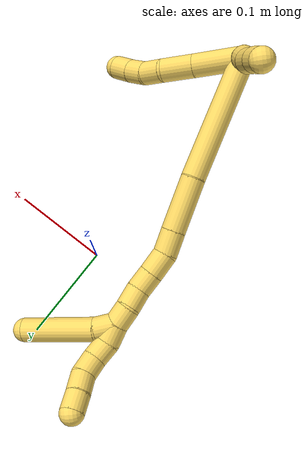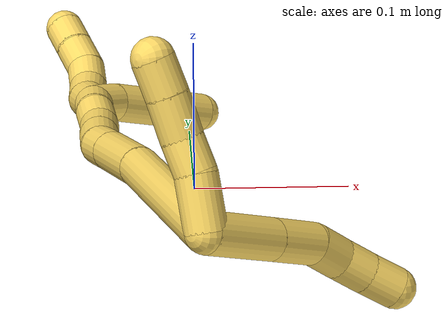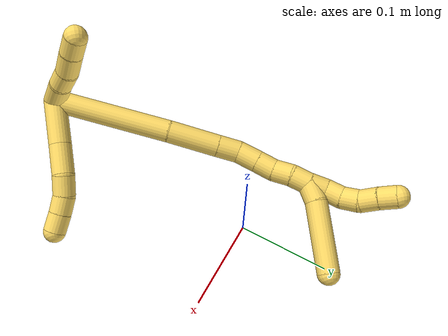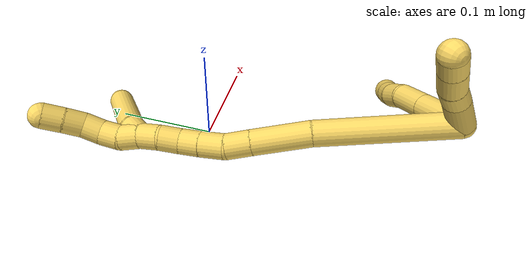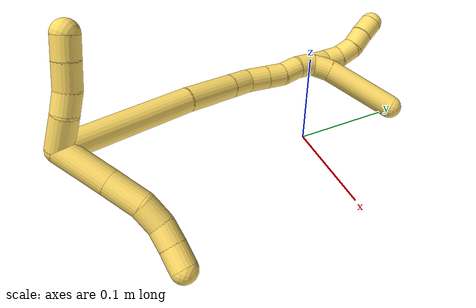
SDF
<sdf version="1.7">
 <world name="default">
  <model name="5">
   <static>0</static>
   <link name="5">
    <collision name="collision-cylinder-e_1_2_8">
     <pose>0.00458 0.001614 0.025398 -0.063476 0.178062 -0.005668</pose>
     <geometry><cylinder><radius>0.0125</radius><length>0.051716</length></cylinder></geometry>
     <surface>
      <friction><ode><mu>1.16</mu><mu2>1.16</mu2><slip1>0</slip1><slip2>0</slip2></ode></friction>
      <contact><ode><kp>1e+06</kp><kd>1</kd><max_vel>0</max_vel><min_depth>0.001</min_depth></ode></contact>
     </surface>
    </collision>
    <visual name="visual-cylinder-e_1_2_8">
     <pose>0.00458 0.001614 0.025398 -0.063476 0.178062 -0.005668</pose>
     <geometry><cylinder><radius>0.0125</radius><length>0.051716</length></cylinder></geometry>
     <material><ambient>1 0.858824 0.4 1</ambient></material>
    </visual>
    <collision name="collision-cylinder-e_2_8_9">
     <pose>0.012321 0.004177 0.067609 -0.056343 0.185522 -0.005243</pose>
     <geometry><cylinder><radius>0.0125</radius><length>0.034268</length></cylinder></geometry>
     <surface>
      <friction><ode><mu>1.16</mu><mu2>1.16</mu2><slip1>0</slip1><slip2>0</slip2></ode></friction>
      <contact><ode><kp>1e+06</kp><kd>1</kd><max_vel>0</max_vel><min_depth>0.001</min_depth></ode></contact>
     </surface>
    </collision>
    <visual name="visual-cylinder-e_2_8_9">
     <pose>0.012321 0.004177 0.067609 -0.056343 0.185522 -0.005243</pose>
     <geometry><cylinder><radius>0.0125</radius><length>0.034268</length></cylinder></geometry>
     <material><ambient>1 0.858824 0.4 1</ambient></material>
    </visual>
    <collision name="collision-cylinder-e_3_9_10">
     <pose>0.020603 0.006902 0.094463 -0.175121 0.46553 -0.041615</pose>
     <geometry><cylinder><radius>0.0125</radius><length>0.022821</length></cylinder></geometry>
     <surface>
      <friction><ode><mu>1.16</mu><mu2>1.16</mu2><slip1>0</slip1><slip2>0</slip2></ode></friction>
      <contact><ode><kp>1e+06</kp><kd>1</kd><max_vel>0</max_vel><min_depth>0.001</min_depth></ode></contact>
     </surface>
    </collision>
    <visual name="visual-cylinder-e_3_9_10">
     <pose>0.020603 0.006902 0.094463 -0.175121 0.46553 -0.041615</pose>
     <geometry><cylinder><radius>0.0125</radius><length>0.022821</length></cylinder></geometry>
     <material><ambient>1 0.858824 0.4 1</ambient></material>
    </visual>
    <collision name="collision-cylinder-e_4_10_11">
     <pose>0.031663 0.008146 0.112585 0.065822 0.632561 0.021548</pose>
     <geometry><cylinder><radius>0.0125</radius><length>0.020085</length></cylinder></geometry>
     <surface>
      <friction><ode><mu>1.16</mu><mu2>1.16</mu2><slip1>0</slip1><slip2>0</slip2></ode></friction>
      <contact><ode><kp>1e+06</kp><kd>1</kd><max_vel>0</max_vel><min_depth>0.001</min_depth></ode></contact>
     </surface>
    </collision>
    <visual name="visual-cylinder-e_4_10_11">
     <pose>0.031663 0.008146 0.112585 0.065822 0.632561 0.021548</pose>
     <geometry><cylinder><radius>0.0125</radius><length>0.020085</length></cylinder></geometry>
     <material><ambient>1 0.858824 0.4 1</ambient></material>
    </visual>
    <collision name="collision-cylinder-e_5_11_6">
     <pose>0.044004 0.006386 0.128967 0.146802 0.6519 0.049699</pose>
     <geometry><cylinder><radius>0.0125</radius><length>0.021109</length></cylinder></geometry>
     <surface>
      <friction><ode><mu>1.16</mu><mu2>1.16</mu2><slip1>0</slip1><slip2>0</slip2></ode></friction>
      <contact><ode><kp>1e+06</kp><kd>1</kd><max_vel>0</max_vel><min_depth>0.001</min_depth></ode></contact>
     </surface>
    </collision>
    <visual name="visual-cylinder-e_5_11_6">
     <pose>0.044004 0.006386 0.128967 0.146802 0.6519 0.049699</pose>
     <geometry><cylinder><radius>0.0125</radius><length>0.021109</length></cylinder></geometry>
     <material><ambient>1 0.858824 0.4 1</ambient></material>
    </visual>
    <collision name="collision-cylinder-e_1_2_12">
     <pose>-0.015559 -0.005089 -0.000552 1.67889 -1.25294 -1.35739</pose>
     <geometry><cylinder><radius>0.0125</radius><length>0.032759</length></cylinder></geometry>
     <surface>
      <friction><ode><mu>1.16</mu><mu2>1.16</mu2><slip1>0</slip1><slip2>0</slip2></ode></friction>
      <contact><ode><kp>1e+06</kp><kd>1</kd><max_vel>0</max_vel><min_depth>0.001</min_depth></ode></contact>
     </surface>
    </collision>
    <visual name="visual-cylinder-e_1_2_12">
     <pose>-0.015559 -0.005089 -0.000552 1.67889 -1.25294 -1.35739</pose>
     <geometry><cylinder><radius>0.0125</radius><length>0.032759</length></cylinder></geometry>
     <material><ambient>1 0.858824 0.4 1</ambient></material>
    </visual>
    <collision name="collision-cylinder-e_2_12_13">
     <pose>-0.04109 -0.011745 -0.002773 2.38773 -1.34515 -2.21907</pose>
     <geometry><cylinder><radius>0.0125</radius><length>0.020462</length></cylinder></geometry>
     <surface>
      <friction><ode><mu>1.16</mu><mu2>1.16</mu2><slip1>0</slip1><slip2>0</slip2></ode></friction>
      <contact><ode><kp>1e+06</kp><kd>1</kd><max_vel>0</max_vel><min_depth>0.001</min_depth></ode></contact>
     </surface>
    </collision>
    <visual name="visual-cylinder-e_2_12_13">
     <pose>-0.04109 -0.011745 -0.002773 2.38773 -1.34515 -2.21907</pose>
     <geometry><cylinder><radius>0.0125</radius><length>0.020462</length></cylinder></geometry>
     <material><ambient>1 0.858824 0.4 1</ambient></material>
    </visual>
    <collision name="collision-cylinder-e_3_13_14">
     <pose>-0.062765 -0.017144 -0.007695 2.27463 -1.16517 -1.91682</pose>
     <geometry><cylinder><radius>0.0125</radius><length>0.025475</length></cylinder></geometry>
     <surface>
      <friction><ode><mu>1.16</mu><mu2>1.16</mu2><slip1>0</slip1><slip2>0</slip2></ode></friction>
      <contact><ode><kp>1e+06</kp><kd>1</kd><max_vel>0</max_vel><min_depth>0.001</min_depth></ode></contact>
     </surface>
    </collision>
    <visual name="visual-cylinder-e_3_13_14">
     <pose>-0.062765 -0.017144 -0.007695 2.27463 -1.16517 -1.91682</pose>
     <geometry><cylinder><radius>0.0125</radius><length>0.025475</length></cylinder></geometry>
     <material><ambient>1 0.858824 0.4 1</ambient></material>
    </visual>
    <collision name="collision-cylinder-e_4_14_5">
     <pose>-0.08432 -0.023748 -0.013904 2.38838 -1.18046 -2.07498</pose>
     <geometry><cylinder><radius>0.0125</radius><length>0.021304</length></cylinder></geometry>
     <surface>
      <friction><ode><mu>1.16</mu><mu2>1.16</mu2><slip1>0</slip1><slip2>0</slip2></ode></friction>
      <contact><ode><kp>1e+06</kp><kd>1</kd><max_vel>0</max_vel><min_depth>0.001</min_depth></ode></contact>
     </surface>
    </collision>
    <visual name="visual-cylinder-e_4_14_5">
     <pose>-0.08432 -0.023748 -0.013904 2.38838 -1.18046 -2.07498</pose>
     <geometry><cylinder><radius>0.0125</radius><length>0.021304</length></cylinder></geometry>
     <material><ambient>1 0.858824 0.4 1</ambient></material>
    </visual>
    <collision name="collision-cylinder-e_1_2_15">
     <pose>-0.036956 0.045331 0.031655 -0.961207 -0.589212 0.313809</pose>
     <geometry><cylinder><radius>0.0125</radius><length>0.133006</length></cylinder></geometry>
     <surface>
      <friction><ode><mu>1.16</mu><mu2>1.16</mu2><slip1>0</slip1><slip2>0</slip2></ode></friction>
      <contact><ode><kp>1e+06</kp><kd>1</kd><max_vel>0</max_vel><min_depth>0.001</min_depth></ode></contact>
     </surface>
    </collision>
    <visual name="visual-cylinder-e_1_2_15">
     <pose>-0.036956 0.045331 0.031655 -0.961207 -0.589212 0.313809</pose>
     <geometry><cylinder><radius>0.0125</radius><length>0.133006</length></cylinder></geometry>
     <material><ambient>1 0.858824 0.4 1</ambient></material>
    </visual>
    <collision name="collision-cylinder-e_2_15_16">
     <pose>-0.087524 0.111788 0.07627 -1.02051 -0.502231 0.285208</pose>
     <geometry><cylinder><radius>0.0125</radius><length>0.056554</length></cylinder></geometry>
     <surface>
      <friction><ode><mu>1.16</mu><mu2>1.16</mu2><slip1>0</slip1><slip2>0</slip2></ode></friction>
      <contact><ode><kp>1e+06</kp><kd>1</kd><max_vel>0</max_vel><min_depth>0.001</min_depth></ode></contact>
     </surface>
    </collision>
    <visual name="visual-cylinder-e_2_15_16">
     <pose>-0.087524 0.111788 0.07627 -1.02051 -0.502231 0.285208</pose>
     <geometry><cylinder><radius>0.0125</radius><length>0.056554</length></cylinder></geometry>
     <material><ambient>1 0.858824 0.4 1</ambient></material>
    </visual>
    <collision name="collision-cylinder-e_3_16_17">
     <pose>-0.107032 0.142208 0.094727 -1.03682 -0.499788 0.28916</pose>
     <geometry><cylinder><radius>0.0125</radius><length>0.024605</length></cylinder></geometry>
     <surface>
      <friction><ode><mu>1.16</mu><mu2>1.16</mu2><slip1>0</slip1><slip2>0</slip2></ode></friction>
      <contact><ode><kp>1e+06</kp><kd>1</kd><max_vel>0</max_vel><min_depth>0.001</min_depth></ode></contact>
     </surface>
    </collision>
    <visual name="visual-cylinder-e_3_16_17">
     <pose>-0.107032 0.142208 0.094727 -1.03682 -0.499788 0.28916</pose>
     <geometry><cylinder><radius>0.0125</radius><length>0.024605</length></cylinder></geometry>
     <material><ambient>1 0.858824 0.4 1</ambient></material>
    </visual>
    <collision name="collision-cylinder-e_4_17_18">
     <pose>-0.118774 0.15832 0.108264 -0.703175 -0.506272 0.18922</pose>
     <geometry><cylinder><radius>0.0125</radius><length>0.024109</length></cylinder></geometry>
     <surface>
      <friction><ode><mu>1.16</mu><mu2>1.16</mu2><slip1>0</slip1><slip2>0</slip2></ode></friction>
      <contact><ode><kp>1e+06</kp><kd>1</kd><max_vel>0</max_vel><min_depth>0.001</min_depth></ode></contact>
     </surface>
    </collision>
    <visual name="visual-cylinder-e_4_17_18">
     <pose>-0.118774 0.15832 0.108264 -0.703175 -0.506272 0.18922</pose>
     <geometry><cylinder><radius>0.0125</radius><length>0.024109</length></cylinder></geometry>
     <material><ambient>1 0.858824 0.4 1</ambient></material>
    </visual>
    <collision name="collision-cylinder-e_5_18_19">
     <pose>-0.129702 0.17066 0.123367 -0.663801 -0.515788 0.181316</pose>
     <geometry><cylinder><radius>0.0125</radius><length>0.020609</length></cylinder></geometry>
     <surface>
      <friction><ode><mu>1.16</mu><mu2>1.16</mu2><slip1>0</slip1><slip2>0</slip2></ode></friction>
      <contact><ode><kp>1e+06</kp><kd>1</kd><max_vel>0</max_vel><min_depth>0.001</min_depth></ode></contact>
     </surface>
    </collision>
    <visual name="visual-cylinder-e_5_18_19">
     <pose>-0.129702 0.17066 0.123367 -0.663801 -0.515788 0.181316</pose>
     <geometry><cylinder><radius>0.0125</radius><length>0.020609</length></cylinder></geometry>
     <material><ambient>1 0.858824 0.4 1</ambient></material>
    </visual>
    <collision name="collision-cylinder-e_6_19_20">
     <pose>-0.141775 0.181339 0.136155 -0.73286 -0.736757 0.294124</pose>
     <geometry><cylinder><radius>0.0125</radius><length>0.02081</length></cylinder></geometry>
     <surface>
      <friction><ode><mu>1.16</mu><mu2>1.16</mu2><slip1>0</slip1><slip2>0</slip2></ode></friction>
      <contact><ode><kp>1e+06</kp><kd>1</kd><max_vel>0</max_vel><min_depth>0.001</min_depth></ode></contact>
     </surface>
    </collision>
    <visual name="visual-cylinder-e_6_19_20">
     <pose>-0.141775 0.181339 0.136155 -0.73286 -0.736757 0.294124</pose>
     <geometry><cylinder><radius>0.0125</radius><length>0.02081</length></cylinder></geometry>
     <material><ambient>1 0.858824 0.4 1</ambient></material>
    </visual>
    <collision name="collision-cylinder-e_7_20_1">
     <pose>-0.153784 0.192313 0.14852 -0.71975 -0.516918 0.198293</pose>
     <geometry><cylinder><radius>0.0125</radius><length>0.020306</length></cylinder></geometry>
     <surface>
      <friction><ode><mu>1.16</mu><mu2>1.16</mu2><slip1>0</slip1><slip2>0</slip2></ode></friction>
      <contact><ode><kp>1e+06</kp><kd>1</kd><max_vel>0</max_vel><min_depth>0.001</min_depth></ode></contact>
     </surface>
    </collision>
    <visual name="visual-cylinder-e_7_20_1">
     <pose>-0.153784 0.192313 0.14852 -0.71975 -0.516918 0.198293</pose>
     <geometry><cylinder><radius>0.0125</radius><length>0.020306</length></cylinder></geometry>
     <material><ambient>1 0.858824 0.4 1</ambient></material>
    </visual>
    <collision name="collision-cylinder-e_1_1_21">
     <pose>-0.159189 0.199522 0.165836 -0.129482 -0.035985 0.002333</pose>
     <geometry><cylinder><radius>0.0125</radius><length>0.02155</length></cylinder></geometry>
     <surface>
      <friction><ode><mu>1.16</mu><mu2>1.16</mu2><slip1>0</slip1><slip2>0</slip2></ode></friction>
      <contact><ode><kp>1e+06</kp><kd>1</kd><max_vel>0</max_vel><min_depth>0.001</min_depth></ode></contact>
     </surface>
    </collision>
    <visual name="visual-cylinder-e_1_1_21">
     <pose>-0.159189 0.199522 0.165836 -0.129482 -0.035985 0.002333</pose>
     <geometry><cylinder><radius>0.0125</radius><length>0.02155</length></cylinder></geometry>
     <material><ambient>1 0.858824 0.4 1</ambient></material>
    </visual>
    <collision name="collision-cylinder-e_2_21_4">
     <pose>-0.1529 0.20196 0.215152 -0.027104 0.171061 -0.002324</pose>
     <geometry><cylinder><radius>0.0125</radius><length>0.07845</length></cylinder></geometry>
     <surface>
      <friction><ode><mu>1.16</mu><mu2>1.16</mu2><slip1>0</slip1><slip2>0</slip2></ode></friction>
      <contact><ode><kp>1e+06</kp><kd>1</kd><max_vel>0</max_vel><min_depth>0.001</min_depth></ode></contact>
     </surface>
    </collision>
    <visual name="visual-cylinder-e_2_21_4">
     <pose>-0.1529 0.20196 0.215152 -0.027104 0.171061 -0.002324</pose>
     <geometry><cylinder><radius>0.0125</radius><length>0.07845</length></cylinder></geometry>
     <material><ambient>1 0.858824 0.4 1</ambient></material>
    </visual>
    <collision name="collision-cylinder-e_1_1_22">
     <pose>-0.163527 0.205227 0.160385 -0.935898 -0.492179 0.252537</pose>
     <geometry><cylinder><radius>0.0125</radius><length>0.02</length></cylinder></geometry>
     <surface>
      <friction><ode><mu>1.16</mu><mu2>1.16</mu2><slip1>0</slip1><slip2>0</slip2></ode></friction>
      <contact><ode><kp>1e+06</kp><kd>1</kd><max_vel>0</max_vel><min_depth>0.001</min_depth></ode></contact>
     </surface>
    </collision>
    <visual name="visual-cylinder-e_1_1_22">
     <pose>-0.163527 0.205227 0.160385 -0.935898 -0.492179 0.252537</pose>
     <geometry><cylinder><radius>0.0125</radius><length>0.02</length></cylinder></geometry>
     <material><ambient>1 0.858824 0.4 1</ambient></material>
    </visual>
    <collision name="collision-cylinder-e_2_22_23">
     <pose>-0.174143 0.216622 0.172454 -0.560984 -0.62985 0.18715</pose>
     <geometry><cylinder><radius>0.0125</radius><length>0.02</length></cylinder></geometry>
     <surface>
      <friction><ode><mu>1.16</mu><mu2>1.16</mu2><slip1>0</slip1><slip2>0</slip2></ode></friction>
      <contact><ode><kp>1e+06</kp><kd>1</kd><max_vel>0</max_vel><min_depth>0.001</min_depth></ode></contact>
     </surface>
    </collision>
    <visual name="visual-cylinder-e_2_22_23">
     <pose>-0.174143 0.216622 0.172454 -0.560984 -0.62985 0.18715</pose>
     <geometry><cylinder><radius>0.0125</radius><length>0.02</length></cylinder></geometry>
     <material><ambient>1 0.858824 0.4 1</ambient></material>
    </visual>
    <collision name="collision-cylinder-e_3_23_24">
     <pose>-0.188141 0.223772 0.18441 -0.50854 -0.945475 0.26428</pose>
     <geometry><cylinder><radius>0.0125</radius><length>0.02</length></cylinder></geometry>
     <surface>
      <friction><ode><mu>1.16</mu><mu2>1.16</mu2><slip1>0</slip1><slip2>0</slip2></ode></friction>
      <contact><ode><kp>1e+06</kp><kd>1</kd><max_vel>0</max_vel><min_depth>0.001</min_depth></ode></contact>
     </surface>
    </collision>
    <visual name="visual-cylinder-e_3_23_24">
     <pose>-0.188141 0.223772 0.18441 -0.50854 -0.945475 0.26428</pose>
     <geometry><cylinder><radius>0.0125</radius><length>0.02</length></cylinder></geometry>
     <material><ambient>1 0.858824 0.4 1</ambient></material>
    </visual>
    <collision name="collision-cylinder-e_4_24_25">
     <pose>-0.205511 0.229884 0.191409 -1.04643 -1.18442 0.740368</pose>
     <geometry><cylinder><radius>0.0125</radius><length>0.02</length></cylinder></geometry>
     <surface>
      <friction><ode><mu>1.16</mu><mu2>1.16</mu2><slip1>0</slip1><slip2>0</slip2></ode></friction>
      <contact><ode><kp>1e+06</kp><kd>1</kd><max_vel>0</max_vel><min_depth>0.001</min_depth></ode></contact>
     </surface>
    </collision>
    <visual name="visual-cylinder-e_4_24_25">
     <pose>-0.205511 0.229884 0.191409 -1.04643 -1.18442 0.740368</pose>
     <geometry><cylinder><radius>0.0125</radius><length>0.02</length></cylinder></geometry>
     <material><ambient>1 0.858824 0.4 1</ambient></material>
    </visual>
    <collision name="collision-cylinder-e_5_25_3">
     <pose>-0.223714 0.236889 0.195758 -0.989013 -1.10618 0.642683</pose>
     <geometry><cylinder><radius>0.0125</radius><length>0.02</length></cylinder></geometry>
     <surface>
      <friction><ode><mu>1.16</mu><mu2>1.16</mu2><slip1>0</slip1><slip2>0</slip2></ode></friction>
      <contact><ode><kp>1e+06</kp><kd>1</kd><max_vel>0</max_vel><min_depth>0.001</min_depth></ode></contact>
     </surface>
    </collision>
    <visual name="visual-cylinder-e_5_25_3">
     <pose>-0.223714 0.236889 0.195758 -0.989013 -1.10618 0.642683</pose>
     <geometry><cylinder><radius>0.0125</radius><length>0.02</length></cylinder></geometry>
     <material><ambient>1 0.858824 0.4 1</ambient></material>
    </visual>
    <collision name="collision-sphere-3">
     <pose>-0.232654 0.240633 0.19822 0 -0 0</pose>
     <geometry><sphere><radius>0.0125</radius></sphere></geometry>
     <surface>
      <friction><ode><mu>1.16</mu><mu2>1.16</mu2><slip1>0</slip1><slip2>0</slip2></ode></friction>
      <contact><ode><kp>1e+06</kp><kd>1</kd><max_vel>0</max_vel><min_depth>0.001</min_depth></ode></contact>
     </surface>
    </collision>
    <visual name="visual-sphere-3">
     <pose>-0.232654 0.240633 0.19822 0 -0 0</pose>
     <geometry><sphere><radius>0.0125</radius></sphere></geometry>
     <material><ambient>1 0.858824 0.4 1</ambient></material>
    </visual>
    <collision name="collision-sphere-25">
     <pose>-0.214774 0.233146 0.193296 0 -0 0</pose>
     <geometry><sphere><radius>0.0125</radius></sphere></geometry>
     <surface>
      <friction><ode><mu>1.16</mu><mu2>1.16</mu2><slip1>0</slip1><slip2>0</slip2></ode></friction>
      <contact><ode><kp>1e+06</kp><kd>1</kd><max_vel>0</max_vel><min_depth>0.001</min_depth></ode></contact>
     </surface>
    </collision>
    <visual name="visual-sphere-25">
     <pose>-0.214774 0.233146 0.193296 0 -0 0</pose>
     <geometry><sphere><radius>0.0125</radius></sphere></geometry>
     <material><ambient>1 0.858824 0.4 1</ambient></material>
    </visual>
    <collision name="collision-sphere-24">
     <pose>-0.196248 0.226622 0.189523 0 -0 0</pose>
     <geometry><sphere><radius>0.0125</radius></sphere></geometry>
     <surface>
      <friction><ode><mu>1.16</mu><mu2>1.16</mu2><slip1>0</slip1><slip2>0</slip2></ode></friction>
      <contact><ode><kp>1e+06</kp><kd>1</kd><max_vel>0</max_vel><min_depth>0.001</min_depth></ode></contact>
     </surface>
    </collision>
    <visual name="visual-sphere-24">
     <pose>-0.196248 0.226622 0.189523 0 -0 0</pose>
     <geometry><sphere><radius>0.0125</radius></sphere></geometry>
     <material><ambient>1 0.858824 0.4 1</ambient></material>
    </visual>
    <collision name="collision-sphere-23">
     <pose>-0.180033 0.220921 0.179297 0 -0 0</pose>
     <geometry><sphere><radius>0.0125</radius></sphere></geometry>
     <surface>
      <friction><ode><mu>1.16</mu><mu2>1.16</mu2><slip1>0</slip1><slip2>0</slip2></ode></friction>
      <contact><ode><kp>1e+06</kp><kd>1</kd><max_vel>0</max_vel><min_depth>0.001</min_depth></ode></contact>
     </surface>
    </collision>
    <visual name="visual-sphere-23">
     <pose>-0.180033 0.220921 0.179297 0 -0 0</pose>
     <geometry><sphere><radius>0.0125</radius></sphere></geometry>
     <material><ambient>1 0.858824 0.4 1</ambient></material>
    </visual>
    <collision name="collision-sphere-22">
     <pose>-0.168252 0.212323 0.165612 0 -0 0</pose>
     <geometry><sphere><radius>0.0125</radius></sphere></geometry>
     <surface>
      <friction><ode><mu>1.16</mu><mu2>1.16</mu2><slip1>0</slip1><slip2>0</slip2></ode></friction>
      <contact><ode><kp>1e+06</kp><kd>1</kd><max_vel>0</max_vel><min_depth>0.001</min_depth></ode></contact>
     </surface>
    </collision>
    <visual name="visual-sphere-22">
     <pose>-0.168252 0.212323 0.165612 0 -0 0</pose>
     <geometry><sphere><radius>0.0125</radius></sphere></geometry>
     <material><ambient>1 0.858824 0.4 1</ambient></material>
    </visual>
    <collision name="collision-sphere-4">
     <pose>-0.146222 0.203007 0.25379 0 -0 0</pose>
     <geometry><sphere><radius>0.0125</radius></sphere></geometry>
     <surface>
      <friction><ode><mu>1.16</mu><mu2>1.16</mu2><slip1>0</slip1><slip2>0</slip2></ode></friction>
      <contact><ode><kp>1e+06</kp><kd>1</kd><max_vel>0</max_vel><min_depth>0.001</min_depth></ode></contact>
     </surface>
    </collision>
    <visual name="visual-sphere-4">
     <pose>-0.146222 0.203007 0.25379 0 -0 0</pose>
     <geometry><sphere><radius>0.0125</radius></sphere></geometry>
     <material><ambient>1 0.858824 0.4 1</ambient></material>
    </visual>
    <collision name="collision-sphere-21">
     <pose>-0.159577 0.200912 0.176514 0 -0 0</pose>
     <geometry><sphere><radius>0.0125</radius></sphere></geometry>
     <surface>
      <friction><ode><mu>1.16</mu><mu2>1.16</mu2><slip1>0</slip1><slip2>0</slip2></ode></friction>
      <contact><ode><kp>1e+06</kp><kd>1</kd><max_vel>0</max_vel><min_depth>0.001</min_depth></ode></contact>
     </surface>
    </collision>
    <visual name="visual-sphere-21">
     <pose>-0.159577 0.200912 0.176514 0 -0 0</pose>
     <geometry><sphere><radius>0.0125</radius></sphere></geometry>
     <material><ambient>1 0.858824 0.4 1</ambient></material>
    </visual>
    <collision name="collision-sphere-1">
     <pose>-0.158802 0.198131 0.155158 0 -0 0</pose>
     <geometry><sphere><radius>0.0125</radius></sphere></geometry>
     <surface>
      <friction><ode><mu>1.16</mu><mu2>1.16</mu2><slip1>0</slip1><slip2>0</slip2></ode></friction>
      <contact><ode><kp>1e+06</kp><kd>1</kd><max_vel>0</max_vel><min_depth>0.001</min_depth></ode></contact>
     </surface>
    </collision>
    <visual name="visual-sphere-1">
     <pose>-0.158802 0.198131 0.155158 0 -0 0</pose>
     <geometry><sphere><radius>0.0125</radius></sphere></geometry>
     <material><ambient>1 0.858824 0.4 1</ambient></material>
    </visual>
    <collision name="collision-sphere-6">
     <pose>0.050407 0.005158 0.137267 0 -0 0</pose>
     <geometry><sphere><radius>0.0125</radius></sphere></geometry>
     <surface>
      <friction><ode><mu>1.16</mu><mu2>1.16</mu2><slip1>0</slip1><slip2>0</slip2></ode></friction>
      <contact><ode><kp>1e+06</kp><kd>1</kd><max_vel>0</max_vel><min_depth>0.001</min_depth></ode></contact>
     </surface>
    </collision>
    <visual name="visual-sphere-6">
     <pose>0.050407 0.005158 0.137267 0 -0 0</pose>
     <geometry><sphere><radius>0.0125</radius></sphere></geometry>
     <material><ambient>1 0.858824 0.4 1</ambient></material>
    </visual>
    <collision name="collision-sphere-11">
     <pose>0.0376 0.007613 0.120667 0 -0 0</pose>
     <geometry><sphere><radius>0.0125</radius></sphere></geometry>
     <surface>
      <friction><ode><mu>1.16</mu><mu2>1.16</mu2><slip1>0</slip1><slip2>0</slip2></ode></friction>
      <contact><ode><kp>1e+06</kp><kd>1</kd><max_vel>0</max_vel><min_depth>0.001</min_depth></ode></contact>
     </surface>
    </collision>
    <visual name="visual-sphere-11">
     <pose>0.0376 0.007613 0.120667 0 -0 0</pose>
     <geometry><sphere><radius>0.0125</radius></sphere></geometry>
     <material><ambient>1 0.858824 0.4 1</ambient></material>
    </visual>
    <collision name="collision-sphere-10">
     <pose>0.025726 0.008678 0.104503 0 -0 0</pose>
     <geometry><sphere><radius>0.0125</radius></sphere></geometry>
     <surface>
      <friction><ode><mu>1.16</mu><mu2>1.16</mu2><slip1>0</slip1><slip2>0</slip2></ode></friction>
      <contact><ode><kp>1e+06</kp><kd>1</kd><max_vel>0</max_vel><min_depth>0.001</min_depth></ode></contact>
     </surface>
    </collision>
    <visual name="visual-sphere-10">
     <pose>0.025726 0.008678 0.104503 0 -0 0</pose>
     <geometry><sphere><radius>0.0125</radius></sphere></geometry>
     <material><ambient>1 0.858824 0.4 1</ambient></material>
    </visual>
    <collision name="collision-sphere-9">
     <pose>0.015481 0.005125 0.084422 0 -0 0</pose>
     <geometry><sphere><radius>0.0125</radius></sphere></geometry>
     <surface>
      <friction><ode><mu>1.16</mu><mu2>1.16</mu2><slip1>0</slip1><slip2>0</slip2></ode></friction>
      <contact><ode><kp>1e+06</kp><kd>1</kd><max_vel>0</max_vel><min_depth>0.001</min_depth></ode></contact>
     </surface>
    </collision>
    <visual name="visual-sphere-9">
     <pose>0.015481 0.005125 0.084422 0 -0 0</pose>
     <geometry><sphere><radius>0.0125</radius></sphere></geometry>
     <material><ambient>1 0.858824 0.4 1</ambient></material>
    </visual>
    <collision name="collision-sphere-2">
     <geometry><sphere><radius>0.0125</radius></sphere></geometry>
     <surface>
      <friction><ode><mu>1.16</mu><mu2>1.16</mu2><slip1>0</slip1><slip2>0</slip2></ode></friction>
      <contact><ode><kp>1e+06</kp><kd>1</kd><max_vel>0</max_vel><min_depth>0.001</min_depth></ode></contact>
     </surface>
    </collision>
    <visual name="visual-sphere-2">
     <geometry><sphere><radius>0.0125</radius></sphere></geometry>
     <material><ambient>1 0.858824 0.4 1</ambient></material>
    </visual>
    <collision name="collision-sphere-19">
     <pose>-0.134784 0.176183 0.130427 0 -0 0</pose>
     <geometry><sphere><radius>0.0125</radius></sphere></geometry>
     <surface>
      <friction><ode><mu>1.16</mu><mu2>1.16</mu2><slip1>0</slip1><slip2>0</slip2></ode></friction>
      <contact><ode><kp>1e+06</kp><kd>1</kd><max_vel>0</max_vel><min_depth>0.001</min_depth></ode></contact>
     </surface>
    </collision>
    <visual name="visual-sphere-19">
     <pose>-0.134784 0.176183 0.130427 0 -0 0</pose>
     <geometry><sphere><radius>0.0125</radius></sphere></geometry>
     <material><ambient>1 0.858824 0.4 1</ambient></material>
    </visual>
    <collision name="collision-sphere-8">
     <pose>0.00916 0.003229 0.050796 0 -0 0</pose>
     <geometry><sphere><radius>0.0125</radius></sphere></geometry>
     <surface>
      <friction><ode><mu>1.16</mu><mu2>1.16</mu2><slip1>0</slip1><slip2>0</slip2></ode></friction>
      <contact><ode><kp>1e+06</kp><kd>1</kd><max_vel>0</max_vel><min_depth>0.001</min_depth></ode></contact>
     </surface>
    </collision>
    <visual name="visual-sphere-8">
     <pose>0.00916 0.003229 0.050796 0 -0 0</pose>
     <geometry><sphere><radius>0.0125</radius></sphere></geometry>
     <material><ambient>1 0.858824 0.4 1</ambient></material>
    </visual>
    <collision name="collision-sphere-12">
     <pose>-0.031118 -0.010178 -0.001105 0 -0 0</pose>
     <geometry><sphere><radius>0.0125</radius></sphere></geometry>
     <surface>
      <friction><ode><mu>1.16</mu><mu2>1.16</mu2><slip1>0</slip1><slip2>0</slip2></ode></friction>
      <contact><ode><kp>1e+06</kp><kd>1</kd><max_vel>0</max_vel><min_depth>0.001</min_depth></ode></contact>
     </surface>
    </collision>
    <visual name="visual-sphere-12">
     <pose>-0.031118 -0.010178 -0.001105 0 -0 0</pose>
     <geometry><sphere><radius>0.0125</radius></sphere></geometry>
     <material><ambient>1 0.858824 0.4 1</ambient></material>
    </visual>
    <collision name="collision-sphere-13">
     <pose>-0.051061 -0.013312 -0.004442 0 -0 0</pose>
     <geometry><sphere><radius>0.0125</radius></sphere></geometry>
     <surface>
      <friction><ode><mu>1.16</mu><mu2>1.16</mu2><slip1>0</slip1><slip2>0</slip2></ode></friction>
      <contact><ode><kp>1e+06</kp><kd>1</kd><max_vel>0</max_vel><min_depth>0.001</min_depth></ode></contact>
     </surface>
    </collision>
    <visual name="visual-sphere-13">
     <pose>-0.051061 -0.013312 -0.004442 0 -0 0</pose>
     <geometry><sphere><radius>0.0125</radius></sphere></geometry>
     <material><ambient>1 0.858824 0.4 1</ambient></material>
    </visual>
    <collision name="collision-sphere-14">
     <pose>-0.074469 -0.020975 -0.010947 0 -0 0</pose>
     <geometry><sphere><radius>0.0125</radius></sphere></geometry>
     <surface>
      <friction><ode><mu>1.16</mu><mu2>1.16</mu2><slip1>0</slip1><slip2>0</slip2></ode></friction>
      <contact><ode><kp>1e+06</kp><kd>1</kd><max_vel>0</max_vel><min_depth>0.001</min_depth></ode></contact>
     </surface>
    </collision>
    <visual name="visual-sphere-14">
     <pose>-0.074469 -0.020975 -0.010947 0 -0 0</pose>
     <geometry><sphere><radius>0.0125</radius></sphere></geometry>
     <material><ambient>1 0.858824 0.4 1</ambient></material>
    </visual>
    <collision name="collision-sphere-5">
     <pose>-0.094171 -0.02652 -0.016861 0 -0 0</pose>
     <geometry><sphere><radius>0.0125</radius></sphere></geometry>
     <surface>
      <friction><ode><mu>1.16</mu><mu2>1.16</mu2><slip1>0</slip1><slip2>0</slip2></ode></friction>
      <contact><ode><kp>1e+06</kp><kd>1</kd><max_vel>0</max_vel><min_depth>0.001</min_depth></ode></contact>
     </surface>
    </collision>
    <visual name="visual-sphere-5">
     <pose>-0.094171 -0.02652 -0.016861 0 -0 0</pose>
     <geometry><sphere><radius>0.0125</radius></sphere></geometry>
     <material><ambient>1 0.858824 0.4 1</ambient></material>
    </visual>
    <collision name="collision-sphere-15">
     <pose>-0.073912 0.090661 0.063309 0 -0 0</pose>
     <geometry><sphere><radius>0.0125</radius></sphere></geometry>
     <surface>
      <friction><ode><mu>1.16</mu><mu2>1.16</mu2><slip1>0</slip1><slip2>0</slip2></ode></friction>
      <contact><ode><kp>1e+06</kp><kd>1</kd><max_vel>0</max_vel><min_depth>0.001</min_depth></ode></contact>
     </surface>
    </collision>
    <visual name="visual-sphere-15">
     <pose>-0.073912 0.090661 0.063309 0 -0 0</pose>
     <geometry><sphere><radius>0.0125</radius></sphere></geometry>
     <material><ambient>1 0.858824 0.4 1</ambient></material>
    </visual>
    <collision name="collision-sphere-16">
     <pose>-0.101136 0.132914 0.089231 0 -0 0</pose>
     <geometry><sphere><radius>0.0125</radius></sphere></geometry>
     <surface>
      <friction><ode><mu>1.16</mu><mu2>1.16</mu2><slip1>0</slip1><slip2>0</slip2></ode></friction>
      <contact><ode><kp>1e+06</kp><kd>1</kd><max_vel>0</max_vel><min_depth>0.001</min_depth></ode></contact>
     </surface>
    </collision>
    <visual name="visual-sphere-16">
     <pose>-0.101136 0.132914 0.089231 0 -0 0</pose>
     <geometry><sphere><radius>0.0125</radius></sphere></geometry>
     <material><ambient>1 0.858824 0.4 1</ambient></material>
    </visual>
    <collision name="collision-sphere-17">
     <pose>-0.112928 0.151503 0.100223 0 -0 0</pose>
     <geometry><sphere><radius>0.0125</radius></sphere></geometry>
     <surface>
      <friction><ode><mu>1.16</mu><mu2>1.16</mu2><slip1>0</slip1><slip2>0</slip2></ode></friction>
      <contact><ode><kp>1e+06</kp><kd>1</kd><max_vel>0</max_vel><min_depth>0.001</min_depth></ode></contact>
     </surface>
    </collision>
    <visual name="visual-sphere-17">
     <pose>-0.112928 0.151503 0.100223 0 -0 0</pose>
     <geometry><sphere><radius>0.0125</radius></sphere></geometry>
     <material><ambient>1 0.858824 0.4 1</ambient></material>
    </visual>
    <collision name="collision-sphere-18">
     <pose>-0.124619 0.165137 0.116306 0 -0 0</pose>
     <geometry><sphere><radius>0.0125</radius></sphere></geometry>
     <surface>
      <friction><ode><mu>1.16</mu><mu2>1.16</mu2><slip1>0</slip1><slip2>0</slip2></ode></friction>
      <contact><ode><kp>1e+06</kp><kd>1</kd><max_vel>0</max_vel><min_depth>0.001</min_depth></ode></contact>
     </surface>
    </collision>
    <visual name="visual-sphere-18">
     <pose>-0.124619 0.165137 0.116306 0 -0 0</pose>
     <geometry><sphere><radius>0.0125</radius></sphere></geometry>
     <material><ambient>1 0.858824 0.4 1</ambient></material>
    </visual>
    <collision name="collision-sphere-20">
     <pose>-0.148766 0.186494 0.141883 0 -0 0</pose>
     <geometry><sphere><radius>0.0125</radius></sphere></geometry>
     <surface>
      <friction><ode><mu>1.16</mu><mu2>1.16</mu2><slip1>0</slip1><slip2>0</slip2></ode></friction>
      <contact><ode><kp>1e+06</kp><kd>1</kd><max_vel>0</max_vel><min_depth>0.001</min_depth></ode></contact>
     </surface>
    </collision>
    <visual name="visual-sphere-20">
     <pose>-0.148766 0.186494 0.141883 0 -0 0</pose>
     <geometry><sphere><radius>0.0125</radius></sphere></geometry>
     <material><ambient>1 0.858824 0.4 1</ambient></material>
    </visual>
    <inertial>
     <pose>-0.080915 0.096783 0.094133 0 -0 0</pose>
     <mass>0.75</mass>
     <inertia><ixx>0.000286</ixx><ixy>0</ixy><ixz>0</ixz><iyy>0.000312</iyy><iyz>0</iyz><izz>0</izz></inertia>
    </inertial>
   </link>
   <pose>-0.001213 -0.243283 0.078196 -1.85687 0.847463 -1.03587</pose>
  </model>
 </world>
</sdf>
